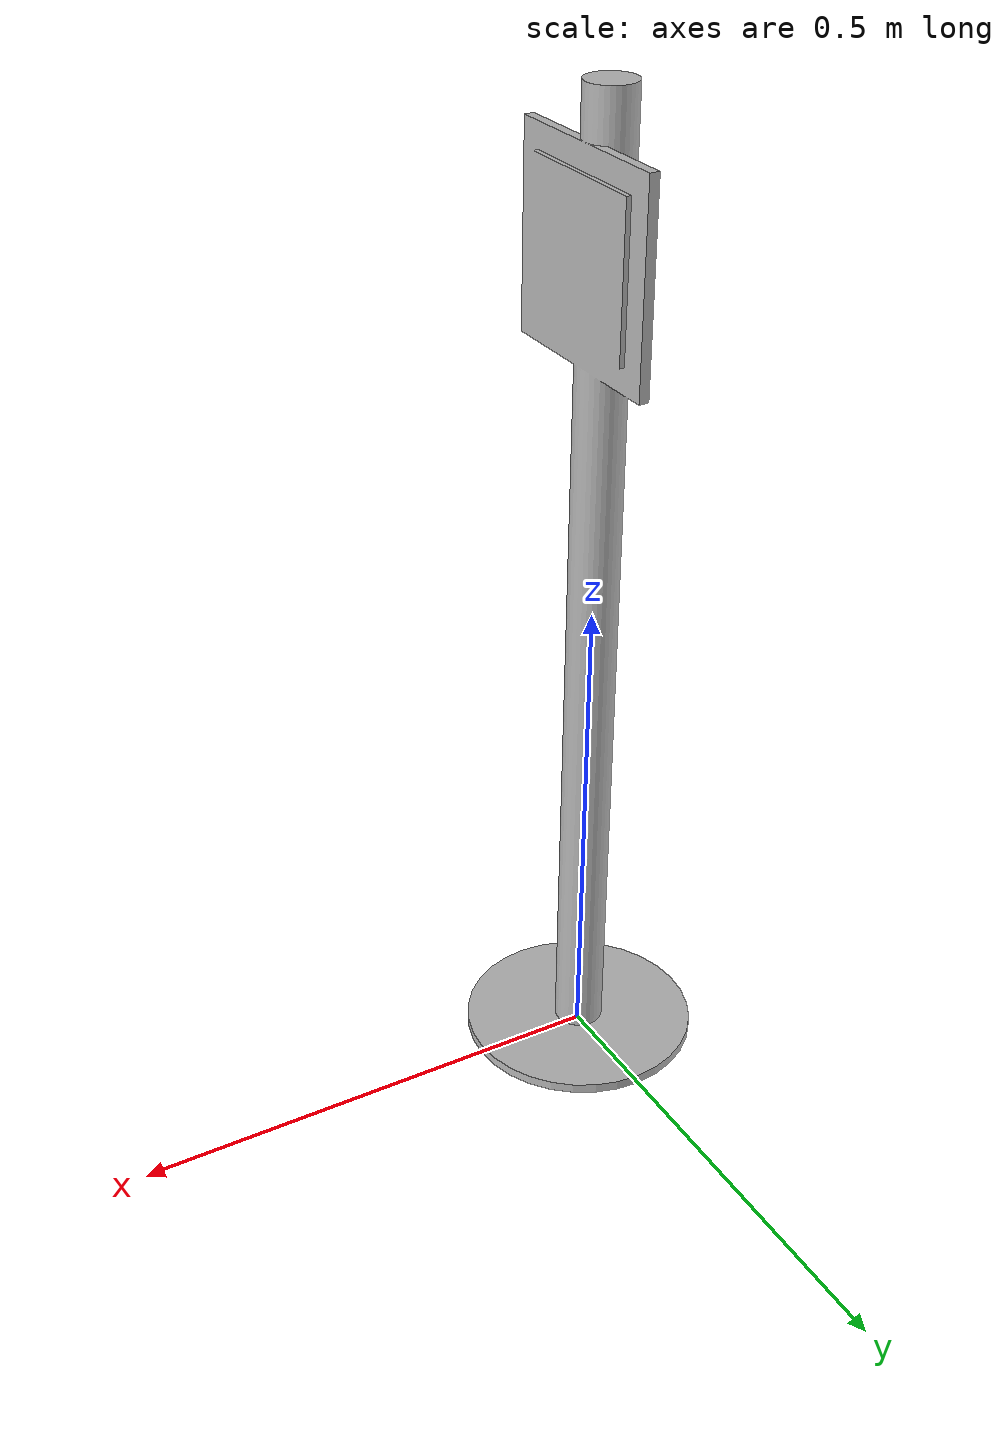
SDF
<?xml version='1.0' ?>
<sdf version='1.6'>
    <model name='ArUco tag id 2'>
        <static>true</static>
        <link name='link'>
            <pose>0 0 0 1.5707963267948966 0 -1.5707963267948966</pose>
            <collision name='collision'>
                <geometry>
                    <mesh>
                        <uri>model://aruco_post_2/meshes/post.obj</uri>
                    </mesh>
                </geometry>
            </collision>
            <visual name='visual'>
                <geometry>
                    <mesh>
                        <uri>model://aruco_post_2/meshes/post.obj</uri>
                    </mesh>
                </geometry>
            </visual>
        </link>
    </model>
</sdf>
